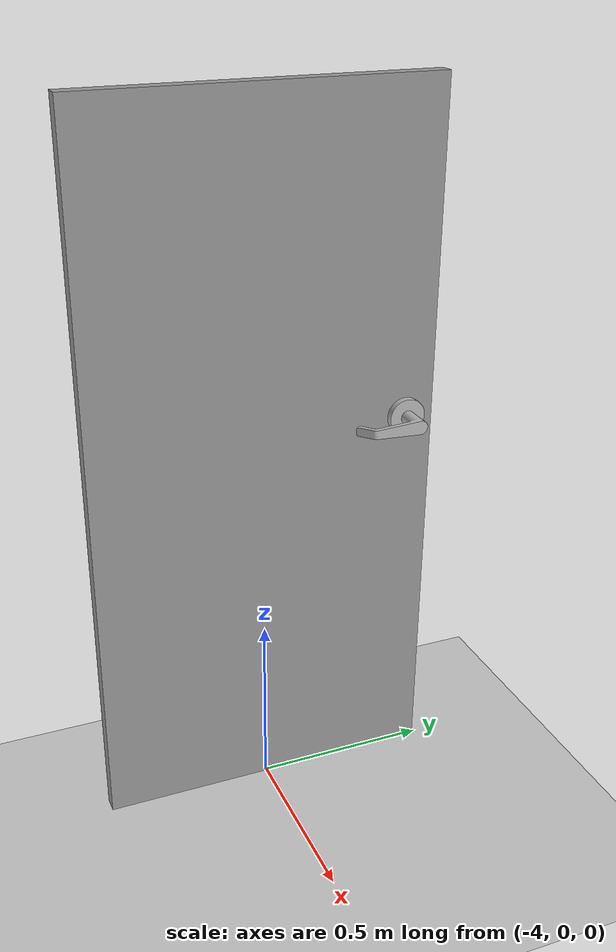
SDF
<sdf version="1.6">
 <world name="default">
  <light name="sun" type="directional">
   <pose>0 0 10 0 -0 0</pose>
   <diffuse>0.8 0.8 0.8 1</diffuse>
   <specular>0.1 0.1 0.1 1</specular>
   <attenuation>
    <range>1000</range>
    <constant>0.9</constant>
    <linear>0.01</linear>
    <quadratic>0.001</quadratic>
   </attenuation>
   <direction>-0.5 0.5 -1</direction>
  </light>
  <model name="ground_plane">
   <static>1</static>
   <link name="link">
    <collision name="collision">
     <geometry><plane><normal>0 0 1</normal><size>100 100</size></plane></geometry>
     <surface><friction><ode><mu>100</mu><mu2>50</mu2></ode></friction></surface>
    </collision>
    <visual name="visual">
     <cast_shadows>0</cast_shadows>
     <geometry><plane><normal>0 0 1</normal><size>100 100</size></plane></geometry>
     <material>
      <script><uri>file://media/materials/scripts/gazebo.material</uri><name>Gazebo/Grey</name></script>
     </material>
    </visual>
   </link>
  </model>
  <gravity>0 0 -9.8</gravity>
  <magnetic_field>6e-06 2.3e-05 -4.2e-05</magnetic_field>
  <atmosphere type="adiabatic"/>
  <physics name="default_physics" default="0" type="ode">
   <max_step_size>0.001</max_step_size>
   <real_time_factor>1</real_time_factor>
   <real_time_update_rate>1000</real_time_update_rate>
  </physics>
  <scene><ambient>0.4 0.4 0.4 1</ambient><background>0.7 0.7 0.7 1</background><shadows>1</shadows></scene>
  <spherical_coordinates>
   <surface_model>EARTH_WGS84</surface_model>
   <latitude_deg>0</latitude_deg>
   <longitude_deg>0</longitude_deg>
   <elevation>0</elevation>
   <heading_deg>0</heading_deg>
  </spherical_coordinates>
  <model name="Door_0">
   <link name="link_0">
    <pose>-2 0 0 0 -0 0</pose>
    <inertial>
     <mass>1</mass>
     <inertia>
      <ixx>0.166667</ixx>
      <ixy>0</ixy>
      <ixz>0</ixz>
      <iyy>0.166667</iyy>
      <iyz>0</iyz>
      <izz>0.166667</izz>
     </inertia>
    </inertial>
    <kinematic>1</kinematic>
    <visual name="visual">
     <pose>-2 0 0 0 -0 0</pose>
     <geometry><box><size>0.045 0.96 1.97</size></box></geometry>
     <material>
      <lighting>1</lighting>
      <script><uri>file://media/materials/scripts/gazebo.material</uri><name>Gazebo/Grey</name></script>
      <ambient>0.3 0.3 0.3 1</ambient>
      <diffuse>0.7 0.7 0.7 1</diffuse>
      <specular>0.01 0.01 0.01 1</specular>
      <emissive>0 0 0 1</emissive>
      <shader type="vertex"><normal_map>__default__</normal_map></shader>
     </material>
    </visual>
    <collision name="collision">
     <pose>-2 0 0 0 -0 0</pose>
     <geometry><box><size>0.045 0.96 1.97</size></box></geometry>
     <surface>
      <friction>
       <ode><mu>1</mu><mu2>1</mu2><fdir1>0 0 0</fdir1><slip1>0</slip1><slip2>0</slip2></ode>
       <torsional>
        <coefficient>1</coefficient>
        <patch_radius>0</patch_radius>
        <surface_radius>0</surface_radius>
        <use_patch_radius>1</use_patch_radius>
        <ode><slip>0</slip></ode>
       </torsional>
      </friction>
      <bounce><restitution_coefficient>0</restitution_coefficient><threshold>1e+06</threshold></bounce>
      <contact>
       <collide_without_contact>0</collide_without_contact>
       <collide_without_contact_bitmask>1</collide_without_contact_bitmask>
       <collide_bitmask>1</collide_bitmask>
       <ode>
        <soft_cfm>0</soft_cfm>
        <soft_erp>0.2</soft_erp>
        <kp>1e+13</kp>
        <kd>1</kd>
        <max_vel>0.01</max_vel>
        <min_depth>0</min_depth>
       </ode>
       <bullet>
        <split_impulse>1</split_impulse>
        <split_impulse_penetration_threshold>-0.01</split_impulse_penetration_threshold>
        <soft_cfm>0</soft_cfm>
        <soft_erp>0.2</soft_erp>
        <kp>1e+13</kp>
        <kd>1</kd>
       </bullet>
      </contact>
     </surface>
    </collision>
   </link>
   <static>0</static>
   <pose>0 0 1 0 -0 0</pose>
  </model>
  <model name="Door_n_handle">
   <model name="door_handle">
    <link name="handle">
     <collision name="collision">
      <geometry><mesh><uri>model://door_handle/meshes/door_handle.dae</uri></mesh></geometry>
     </collision>
     <visual name="visual">
      <geometry><mesh><uri>model://door_handle/meshes/door_handle.dae</uri></mesh></geometry>
     </visual>
     <inertial>
      <inertia><ixx>1</ixx><ixy>0</ixy><ixz>0</ixz><iyy>1</iyy><iyz>0</iyz><izz>1</izz></inertia>
      <mass>1</mass>
     </inertial>
    </link>
    <pose>-3.97821 0.39952 1.10484 -1.56883 -0.005707 -1.55354</pose>
   </model>
   <static>0</static>
   <pose>1e-06 0 2e-06 0 -0 0</pose>
  </model>
 </world>
</sdf>
